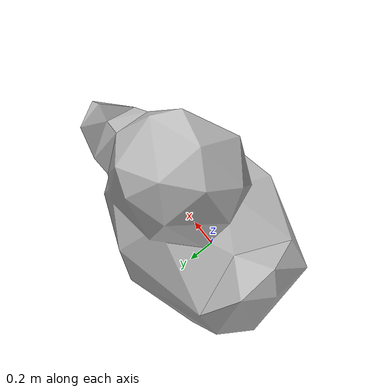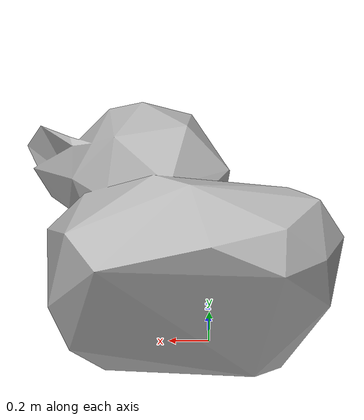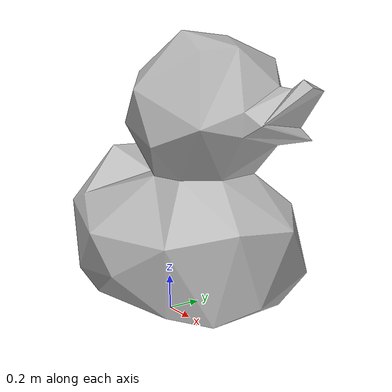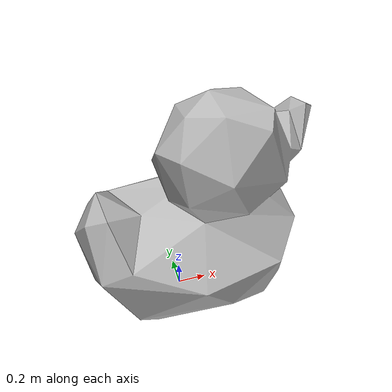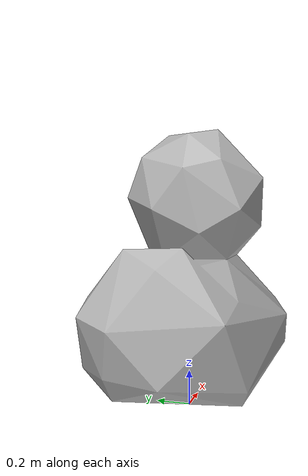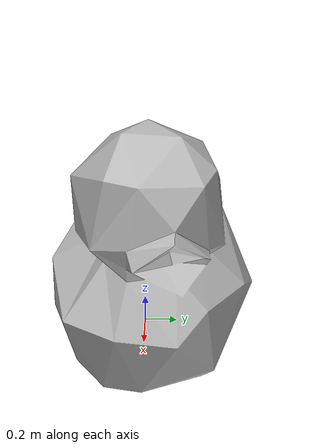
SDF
<?xml version='1.0'?>
<sdf version='1.6'>
  <model name='duck'>
    <static>false</static>
    <plugin
        filename="gz-marine1-hydrodynamics-system"
        name="gz::sim::systems::Hydrodynamics">
    </plugin>
    <link name="base_link">
      <visual name="visual">
        <pose>0 0 0 1.5708 0 0</pose>
        <geometry>
          <mesh>
            <uri>model://duck/meshes/duck.dae</uri>
          </mesh>
        </geometry>
      </visual>
      <collision name="collision">
        <pose>0 0 0 0 0 0</pose>
        <geometry>
          <mesh>
            <uri>model://duck/meshes/duck_collision.stl</uri>
          </mesh>
        </geometry>
      </collision>
      <inertial>
        <pose>0 0 0 0 0 0</pose>
        <mass>400</mass>
        <inertia>
          <ixx>266</ixx>
          <ixy>0</ixy>
          <iyy>266</iyy>
          <iyz>0</iyz>
          <izz>266</izz>
        </inertia>
      </inertial>
    </link>
  </model>
</sdf>
